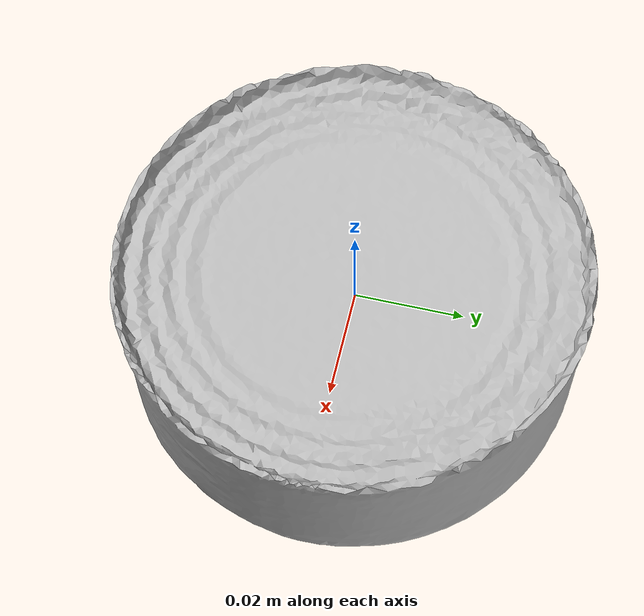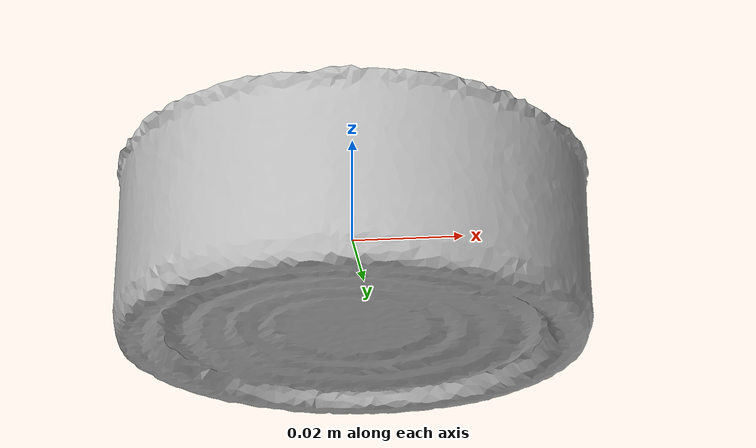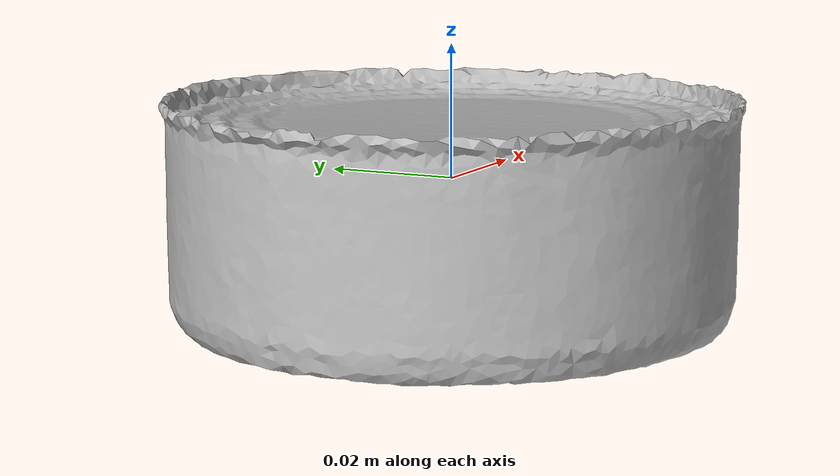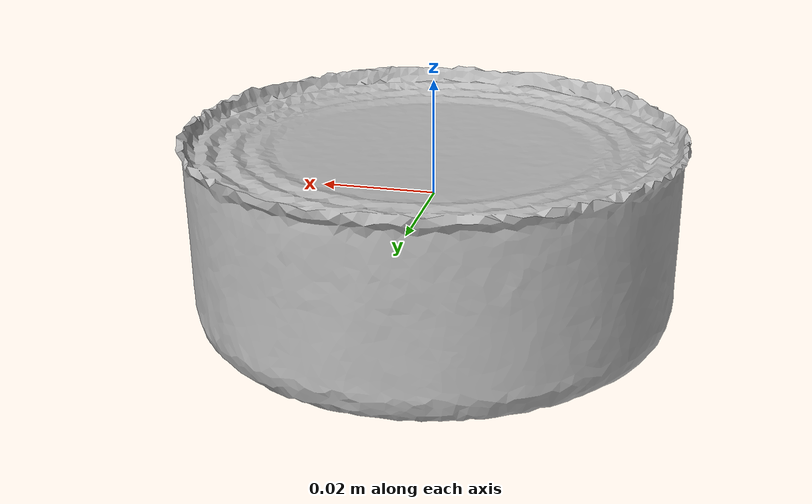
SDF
<?xml version='1.0'?>
<sdf version="1.4">
  <model name="tuna_fish_can">
    <static>false</static>
    <link name="link">
      <inertial>
        <pose>0 0 0 -0.44845414808809636 -1.5705852276942327 0.21285108102447511</pose>
        <mass>0.00015261883396786033</mass>
        <inertia>
          <ixx>1.3941298546481135e-07</ixx>
          <ixy>-8.876035713606121e-24</ixy>
          <ixz>-3.0243791146470074e-24</ixz>
          <iyy>7.961242909265212e-08</iyy>
          <iyz>-8.743818484371327e-24</iyz>
          <izz>7.951765546408439e-08</izz>
        </inertia>
      </inertial>
      <collision name="collision">
        <geometry>
          <mesh>
            <!-- Use a downsampled mesh for collisions -->
            <uri>model://007_tuna_fish_can/google_16k/textured_simple.obj</uri>
	        </mesh>
        </geometry>
        <surface>
      </surface>
      </collision>
      <visual name="visual">
        <geometry>
          <mesh>
            <uri>model://007_tuna_fish_can/google_16k/textured_simple.obj</uri>
	        </mesh>
        </geometry>
      </visual>
    </link>
  </model>
</sdf>
